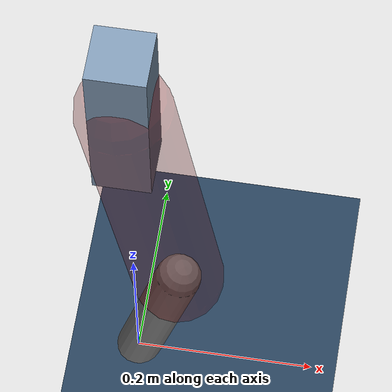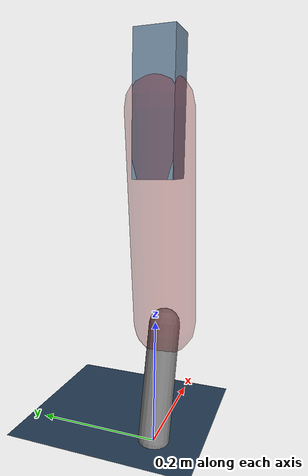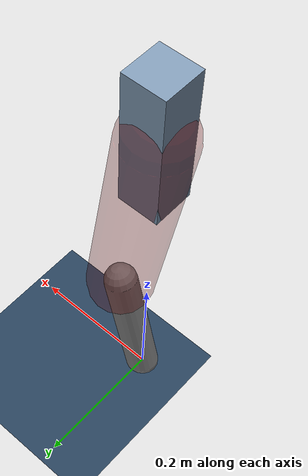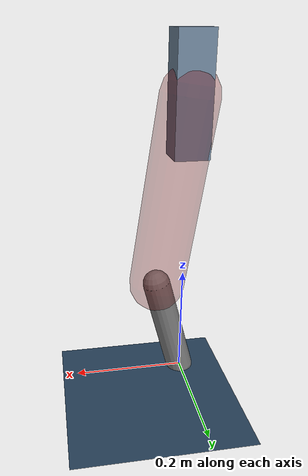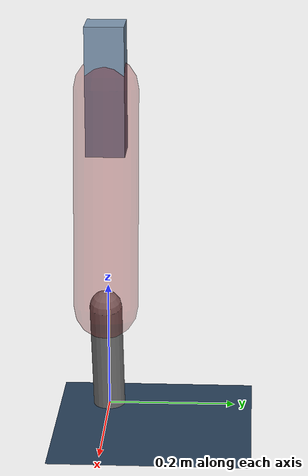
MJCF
<mujoco model="Hopper2D">
	<compiler inertiafromgeom="true" angle="radian" />
	<option timestep="0.001" integrator="implicit" cone="elliptic" solver="Newton" tolerance="1e-10" />

	<default>
		<geom contype="1" conaffinity="1" condim="3" friction="2 0.005 0.0001" solref="0.005 1" />
		<joint limited="true" damping="0.1" />
	</default>

	<asset>
		<texture name="skybox" type="skybox" builtin="gradient" rgb1=".4 .6 .8" rgb2="0 0 0" width="800" height="800" />
		<texture name="grid" type="2d" builtin="checker" rgb1=".1 .2 .3" rgb2=".2 .3 .4" width="300" height="300" mark="edge" markrgb=".2 .3 .4" />
		<material name="ground" texture="grid" texrepeat="1 1" texuniform="true" reflectance="0.1" />
		<material name="leg" rgba="0.5 0.6 0.7 1" />
	</asset>

	<worldbody>

		<geom name="floor" type="plane" size="5 5 0.25" material="ground" />

		<light directional="false" diffuse="0.8 0.8 0.8" specular="0.3 0.3 0.3" pos="0 0 2" dir="0 0 -1" />
		<light mode="targetbodycom" target="base" directional="false" diffuse="0.8 0.8 0.8" specular="0.3 0.3 0.3" pos="0 0 2" dir="0 0 -1" />

		<camera name="fixed" pos="0 -2 1" xyaxes="1 0 0 0 0 1" />
		<camera name="tracking" mode="trackcom" pos="0 -3 1" />

		<body name="root" pos="0 0 0.5169193339193517">
			<joint name="slide_x" type="slide" axis="1 0 0" range="-100 100" />
			<joint name="slide_z" type="slide" axis="0 0 1" range="0 10" />

			<body name="base" pos="0 0 0">
				<geom name="torso" type="box" size="0.03 0.03 0.1" mass="2.281" material="leg" />

				<body name="link1" pos="0 0 0" euler="0 1.4251569487973388 0">
					<joint type="hinge" axis="0 -1 0" pos="0 0 0" name="hinge1" limited="true" range="-3.14 3.14" stiffness="0" damping="0.1" />
					<geom name="thigh" type="capsule" fromto="0 0 0 0.33732148563641584 0 0" size="0.05" rgba="0.5 0 0 0.3" mass="1.0912001597819643" />

					<body name="link2" pos="0.33732148563641584 0 0" euler="0 0.4067959686923783 0">
						<joint type="hinge" axis="0 -1 0" pos="0 0 0" name="hinge2" limited="true" range="-3.14 3.14" stiffness="0" damping="0.1" />
						<geom name="shank" type="capsule" fromto="0 0 0 0.1895978482829359 0 0" size="0.025" mass="0.39207827862634875" />

					</body>
				</body>
			</body>
		</body>
	</worldbody>

	<actuator>
		<motor name="torque1" joint="hinge1" ctrlrange="-69.07536677549865 69.07536677549865" ctrllimited="true" gear="1" />
		<motor name="torque2" joint="hinge2" ctrlrange="-91.72512694914121 91.72512694914121" ctrllimited="true" gear="1" />
	</actuator>
</mujoco>
